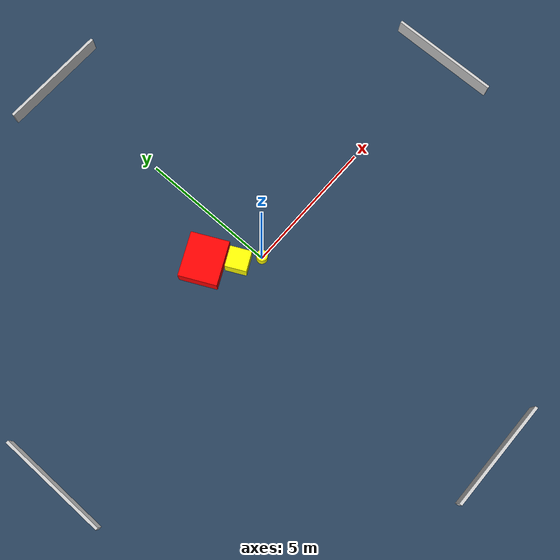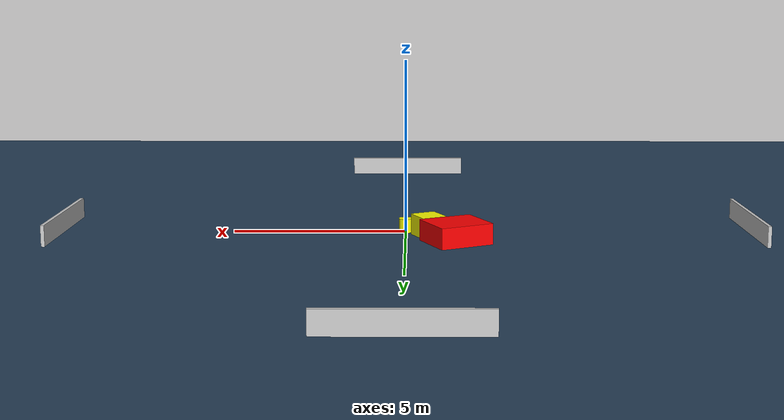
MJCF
<?xml version="1.0" ?>
<mujoco model="generated_environment">
  <option timestep="0.01" integrator="RK4" cone="elliptic"/>
  <default>
    <geom density="1"/>
  </default>
  <asset>
    <texture builtin="gradient" height="3072" name="skybox" rgb1="0.3 0.5 0.7" rgb2="0 0 0" type="skybox" width="512"/>
    <texture builtin="checker" height="300" name="groundplane" rgb1="0.2 0.3 0.4" rgb2="0.1 0.2 0.3" type="2d" width="300"/>
    <material name="groundplane" reflectance="0.2" texrepeat="5 5" texture="groundplane"/>
  </asset>
  <worldbody>
    <light dir="0 0 -1" directional="true" pos="0 0 1.5"/>
    <geom condim="3" friction="0.5 0.005 0.001" material="groundplane" name="floor" pos="0 0 0" size="0 0 0.05" type="plane"/>
    <body name="walls">
      <geom name="wall_1" condim="4" pos="-10.0 0.0 0.3" rgba="0.800000011920929 0.800000011920929 0.800000011920929 1.0" size="0.05 2.0 0.3" type="box"/>
      <geom name="wall_2" condim="4" pos="10.0 0.0 0.3" rgba="0.800000011920929 0.800000011920929 0.800000011920929 1.0" size="0.05 2.0 0.3" type="box"/>
      <geom name="wall_3" condim="4" pos="0.0 -10.0 0.3" rgba="0.800000011920929 0.800000011920929 0.800000011920929 1.0" size="2.0 0.05 0.3" type="box"/>
      <geom name="wall_4" condim="4" pos="0.0 10.0 0.3" rgba="0.800000011920929 0.800000011920929 0.800000011920929 1.0" size="2.0 0.05 0.3" type="box"/>
    </body>
    <body name="robot">
      <joint name="joint_x" type="slide" pos="0 0 0" axis="1 0 0"/>
      <joint name="joint_y" type="slide" pos="0 0 0" axis="0 1 0"/>
      <geom name="robot" type="cylinder" pos="0.0 0.0 0.2" size="0.2 0.2 0.0" mass="5.0" friction="1.0 0.005 0.0001" condim="4" rgba="1.0 1.0 0.0 1.0"/>
    </body>
    <body name="obstacle_1_movable">
      <geom name="obstacle_1_movable" condim="4" pos="-0.6520248835602674 0.49397787056212883 0.3" euler="0 0 116.47256443436301" friction="0.0 0.005 0.001" rgba="1.0 1.0 0.0 1.0" size="0.3833765680664717 0.3722910514155269 0.3" type="box" mass="0.1"/>
      <joint type="free"/>
    </body>
    <body name="obstacle_2_static">
      <geom name="obstacle_2_static" condim="4" pos="-1.416523284944253 1.3728488624591384 0.3" euler="0 0 296.11487927525815" friction="0.0 0.005 0.001" rgba="1.0 0.0 0.0 1.0" size="0.6859063861053252 0.7984647946880128 0.3" type="box"/>
    </body>
  </worldbody>
  <actuator>
    <motor name="actuator_x" joint="joint_x" gear="1" ctrlrange="-1 1"/>
    <motor name="actuator_y" joint="joint_y" gear="1" ctrlrange="-1 1"/>
  </actuator>
</mujoco>
